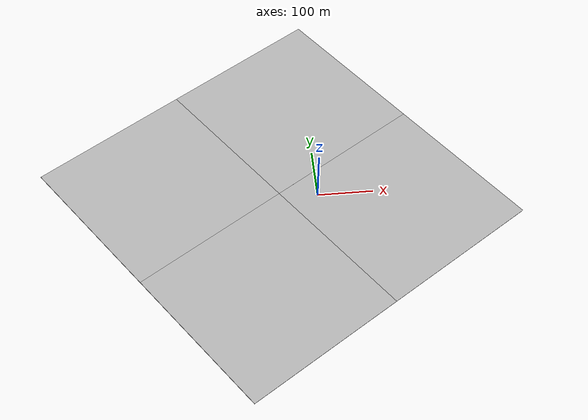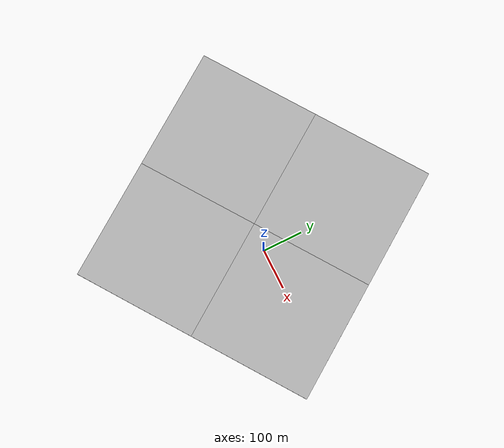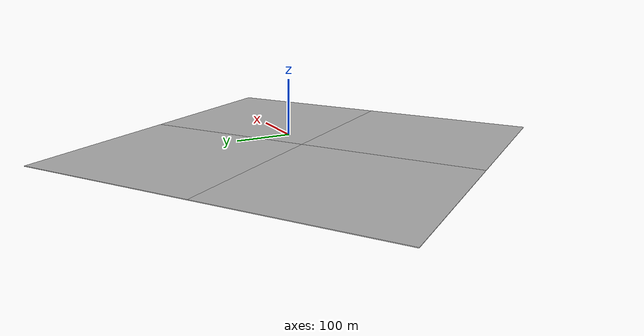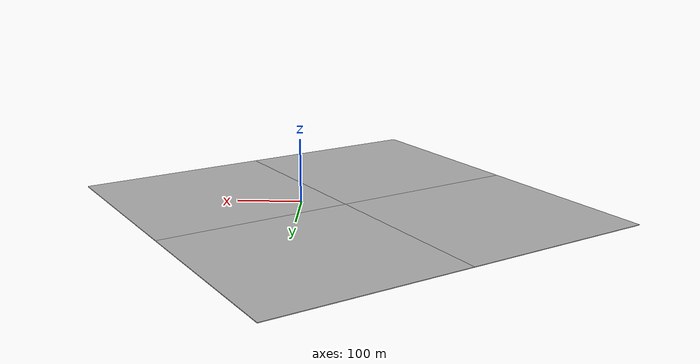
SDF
<sdf version="1.7">
 <world name="default">
  <light name="sun" type="directional">
   <pose>0 0 10 0 -0 0</pose>
   <diffuse>0.8 0.8 0.8 1</diffuse>
   <specular>0.2 0.2 0.2 1</specular>
   <attenuation>
    <range>1000</range>
    <constant>0.9</constant>
    <linear>0.01</linear>
    <quadratic>0.001</quadratic>
   </attenuation>
   <direction>-0.5 0.1 -0.9</direction>
   <spot><inner_angle>0</inner_angle><outer_angle>0</outer_angle><falloff>0</falloff></spot>
  </light>
  <model name="map_satellite_36.0835594_140.07664_400_400">
   <static>1</static>
   <link name="link">
    <collision name="collision">
     <pose>0 0 -0.5 0 -0 0</pose>
     <geometry><box><size>617.733 617.733 1</size></box></geometry>
    </collision>
    <visual name="visual0_0">
     <pose>-154.433 154.433 -0.5 0 -0 1.5708</pose>
     <geometry><box><size>308.866 308.866 1</size></box></geometry>
     <material>
      <script>
       <uri>model://map_satellite_36.0835594_140.07664_400_400/materials/scripts</uri>
       <uri>model://map_satellite_36.0835594_140.07664_400_400/materials/textures</uri>
       <name>map_satellite_36.0835594_140.07664_400_400/0_0</name>
      </script>
     </material>
    </visual>
    <visual name="visual0_1">
     <pose>154.433 154.433 -0.5 0 -0 1.5708</pose>
     <geometry><box><size>308.866 308.866 1</size></box></geometry>
     <material>
      <script>
       <uri>model://map_satellite_36.0835594_140.07664_400_400/materials/scripts</uri>
       <uri>model://map_satellite_36.0835594_140.07664_400_400/materials/textures</uri>
       <name>map_satellite_36.0835594_140.07664_400_400/0_1</name>
      </script>
     </material>
    </visual>
    <visual name="visual1_0">
     <pose>-154.433 -154.433 -0.5 0 -0 1.5708</pose>
     <geometry><box><size>308.866 308.866 1</size></box></geometry>
     <material>
      <script>
       <uri>model://map_satellite_36.0835594_140.07664_400_400/materials/scripts</uri>
       <uri>model://map_satellite_36.0835594_140.07664_400_400/materials/textures</uri>
       <name>map_satellite_36.0835594_140.07664_400_400/1_0</name>
      </script>
     </material>
    </visual>
    <visual name="visual1_1">
     <pose>154.433 -154.433 -0.5 0 -0 1.5708</pose>
     <geometry><box><size>308.866 308.866 1</size></box></geometry>
     <material>
      <script>
       <uri>model://map_satellite_36.0835594_140.07664_400_400/materials/scripts</uri>
       <uri>model://map_satellite_36.0835594_140.07664_400_400/materials/textures</uri>
       <name>map_satellite_36.0835594_140.07664_400_400/1_1</name>
      </script>
     </material>
    </visual>
   </link>
   <pose>-69.3615 9.6139 0 0 -0 0.601607</pose>
  </model>
  <physics type="ode">
   <real_time_update_rate>1000</real_time_update_rate>
   <max_step_size>0.001</max_step_size>
   <real_time_factor>1</real_time_factor>
   <ode>
    <solver>
     <type>quick</type>
     <iters>150</iters>
     <precon_iters>0</precon_iters>
     <sor>1.4</sor>
     <use_dynamic_moi_rescaling>1</use_dynamic_moi_rescaling>
    </solver>
    <constraints>
     <cfm>0</cfm>
     <erp>0.2</erp>
     <contact_max_correcting_vel>100</contact_max_correcting_vel>
     <contact_surface_layer>0.001</contact_surface_layer>
    </constraints>
   </ode>
  </physics>
  <gravity>0 0 -9.8</gravity>
  <magnetic_field>6e-06 2.3e-05 -4.2e-05</magnetic_field>
  <atmosphere type="adiabatic"/>
  <scene><ambient>0.4 0.4 0.4 1</ambient><background>0.7 0.7 0.7 1</background><shadows>1</shadows></scene>
  <spherical_coordinates>
   <surface_model>EARTH_WGS84</surface_model>
   <latitude_deg>0</latitude_deg>
   <longitude_deg>0</longitude_deg>
   <elevation>0</elevation>
   <heading_deg>0</heading_deg>
  </spherical_coordinates>
 </world>
</sdf>
